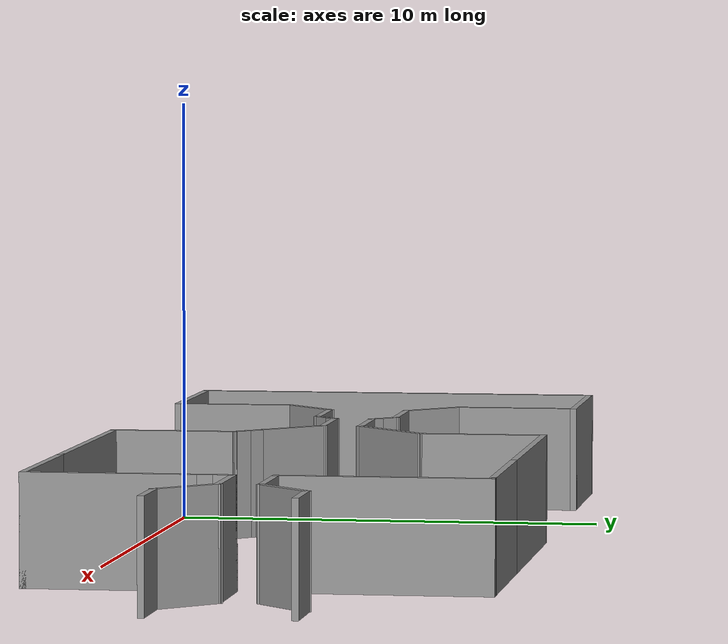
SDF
<?xml version='1.0'?>
<sdf version='1.6'>
  <model name='exp1.sdf'>
    <pose frame=''>5.64467 4.13461 0 0 -0 0</pose>
    <link name='Wall_0'>
      <collision name='Wall_0_Collision'>
        <geometry>
          <box>
            <size>10 0.15 2.5</size>
          </box>
        </geometry>
        <pose frame=''>0 0 1.25 0 -0 0</pose>
      </collision>
      <visual name='Wall_0_Visual'>
        <pose frame=''>0 0 1.25 0 -0 0</pose>
        <geometry>
          <box>
            <size>10 0.15 2.5</size>
          </box>
        </geometry>
        <material>
          <script>
            <uri>file://media/materials/scripts/gazebo.material</uri>
            <name>Gazebo/Grey</name>
          </script>
          <ambient>1 1 1 1</ambient>
        </material>
        <meta>
          <layer>0</layer>
        </meta>
      </visual>
      <pose frame=''>-12.5054 0.070711 0 0 -0 1.5708</pose>
    </link>
    <link name='Wall_1'>
      <collision name='Wall_1_Collision'>
        <geometry>
          <box>
            <size>4 0.15 2.5</size>
          </box>
        </geometry>
        <pose frame=''>0 0 1.25 0 -0 0</pose>
      </collision>
      <visual name='Wall_1_Visual'>
        <pose frame=''>0 0 1.25 0 -0 0</pose>
        <geometry>
          <box>
            <size>4 0.15 2.5</size>
          </box>
        </geometry>
        <material>
          <script>
            <uri>file://media/materials/scripts/gazebo.material</uri>
            <name>Gazebo/Grey</name>
          </script>
          <ambient>1 1 1 1</ambient>
        </material>
        <meta>
          <layer>0</layer>
        </meta>
      </visual>
      <pose frame=''>-10.5804 4.99571 0 0 -0 0</pose>
    </link>
    <link name='Wall_10'>
      <collision name='Wall_10_Collision'>
        <geometry>
          <box>
            <size>0.5 0.15 2.5</size>
          </box>
        </geometry>
        <pose frame=''>0 0 1.25 0 -0 0</pose>
      </collision>
      <visual name='Wall_10_Visual'>
        <pose frame=''>0 0 1.25 0 -0 0</pose>
        <geometry>
          <box>
            <size>0.5 0.15 2.5</size>
          </box>
        </geometry>
        <material>
          <script>
            <uri>file://media/materials/scripts/gazebo.material</uri>
            <name>Gazebo/Grey</name>
          </script>
          <ambient>1 1 1 1</ambient>
        </material>
        <meta>
          <layer>0</layer>
        </meta>
      </visual>
      <pose frame=''>-5.5503 -0.749175 0 0 -0 0.785398</pose>
    </link>
    <link name='Wall_12'>
      <collision name='Wall_12_Collision'>
        <geometry>
          <box>
            <size>0.5 0.15 2.5</size>
          </box>
        </geometry>
        <pose frame=''>0 0 1.25 0 -0 0</pose>
      </collision>
      <visual name='Wall_12_Visual'>
        <pose frame=''>0 0 1.25 0 -0 0</pose>
        <geometry>
          <box>
            <size>0.5 0.15 2.5</size>
          </box>
        </geometry>
        <material>
          <script>
            <uri>file://media/materials/scripts/gazebo.material</uri>
            <name>Gazebo/Grey</name>
          </script>
          <ambient>1 1 1 1</ambient>
        </material>
        <meta>
          <layer>0</layer>
        </meta>
      </visual>
      <pose frame=''>-5.5503 0.890596 0 0 0 -0.785398</pose>
    </link>
    <link name='Wall_13'>
      <collision name='Wall_13_Collision'>
        <geometry>
          <box>
            <size>0.5 0.15 2.5</size>
          </box>
        </geometry>
        <pose frame=''>0 0 1.25 0 -0 0</pose>
      </collision>
      <visual name='Wall_13_Visual'>
        <pose frame=''>0 0 1.25 0 -0 0</pose>
        <geometry>
          <box>
            <size>0.5 0.15 2.5</size>
          </box>
        </geometry>
        <material>
          <script>
            <uri>file://media/materials/scripts/gazebo.material</uri>
            <name>Gazebo/Grey</name>
          </script>
          <ambient>1 1 1 1</ambient>
        </material>
        <meta>
          <layer>0</layer>
        </meta>
      </visual>
      <pose frame=''>-5.30282 0.643109 0 0 0 -0.785398</pose>
    </link>
    <link name='Wall_14'>
      <collision name='Wall_14_Collision'>
        <geometry>
          <box>
            <size>2 0.15 2.5</size>
          </box>
        </geometry>
        <pose frame=''>0 0 1.25 0 -0 0</pose>
      </collision>
      <visual name='Wall_14_Visual'>
        <pose frame=''>0 0 1.25 0 -0 0</pose>
        <geometry>
          <box>
            <size>2 0.15 2.5</size>
          </box>
        </geometry>
        <material>
          <script>
            <uri>file://media/materials/scripts/gazebo.material</uri>
            <name>Gazebo/Grey</name>
          </script>
          <ambient>1 1 1 1</ambient>
        </material>
        <meta>
          <layer>0</layer>
        </meta>
      </visual>
      <pose frame=''>-4.25407 0.519365 0 0 -0 0</pose>
    </link>
    <link name='Wall_16'>
      <collision name='Wall_16_Collision'>
        <geometry>
          <box>
            <size>0.5 0.15 2.5</size>
          </box>
        </geometry>
        <pose frame=''>0 0 1.25 0 -0 0</pose>
      </collision>
      <visual name='Wall_16_Visual'>
        <pose frame=''>0 0 1.25 0 -0 0</pose>
        <geometry>
          <box>
            <size>0.5 0.15 2.5</size>
          </box>
        </geometry>
        <material>
          <script>
            <uri>file://media/materials/scripts/gazebo.material</uri>
            <name>Gazebo/Grey</name>
          </script>
          <ambient>1 1 1 1</ambient>
        </material>
        <meta>
          <layer>0</layer>
        </meta>
      </visual>
      <pose frame=''>-5.30282 -0.501687 0 0 -0 0.785398</pose>
    </link>
    <link name='Wall_17'>
      <collision name='Wall_17_Collision'>
        <geometry>
          <box>
            <size>2 0.15 2.5</size>
          </box>
        </geometry>
        <pose frame=''>0 0 1.25 0 -0 0</pose>
      </collision>
      <visual name='Wall_17_Visual'>
        <pose frame=''>0 0 1.25 0 -0 0</pose>
        <geometry>
          <box>
            <size>2 0.15 2.5</size>
          </box>
        </geometry>
        <material>
          <script>
            <uri>file://media/materials/scripts/gazebo.material</uri>
            <name>Gazebo/Grey</name>
          </script>
          <ambient>1 1 1 1</ambient>
        </material>
        <meta>
          <layer>0</layer>
        </meta>
      </visual>
      <pose frame=''>-4.25407 -0.377943 0 0 -0 0</pose>
    </link>
    <link name='Wall_19'>
      <collision name='Wall_19_Collision'>
        <geometry>
          <box>
            <size>2 0.15 2.5</size>
          </box>
        </geometry>
        <pose frame=''>0 0 1.25 0 -0 0</pose>
      </collision>
      <visual name='Wall_19_Visual'>
        <pose frame=''>0 0 1.25 0 -0 0</pose>
        <geometry>
          <box>
            <size>2 0.15 2.5</size>
          </box>
        </geometry>
        <material>
          <script>
            <uri>file://media/materials/scripts/gazebo.material</uri>
            <name>Gazebo/Grey</name>
          </script>
          <ambient>1 1 1 1</ambient>
        </material>
        <meta>
          <layer>0</layer>
        </meta>
      </visual>
      <pose frame=''>-2.675 -1.03202 0 0 0 -0.785398</pose>
    </link>
    <link name='Wall_2'>
      <collision name='Wall_2_Collision'>
        <geometry>
          <box>
            <size>3 0.15 2.5</size>
          </box>
        </geometry>
        <pose frame=''>0 0 1.25 0 -0 0</pose>
      </collision>
      <visual name='Wall_2_Visual'>
        <pose frame=''>0 0 1.25 0 -0 0</pose>
        <geometry>
          <box>
            <size>3 0.15 2.5</size>
          </box>
        </geometry>
        <material>
          <script>
            <uri>file://media/materials/scripts/gazebo.material</uri>
            <name>Gazebo/Grey</name>
          </script>
          <ambient>1 1 1 1</ambient>
        </material>
        <meta>
          <layer>0</layer>
        </meta>
      </visual>
      <pose frame=''>-8.65542 3.57071 0 0 0 -1.5708</pose>
    </link>
    <link name='Wall_20'>
      <collision name='Wall_20_Collision'>
        <geometry>
          <box>
            <size>0.5 0.15 2.5</size>
          </box>
        </geometry>
        <pose frame=''>0 0 1.25 0 -0 0</pose>
      </collision>
      <visual name='Wall_20_Visual'>
        <pose frame=''>0 0 1.25 0 -0 0</pose>
        <geometry>
          <box>
            <size>0.5 0.15 2.5</size>
          </box>
        </geometry>
        <material>
          <script>
            <uri>file://media/materials/scripts/gazebo.material</uri>
            <name>Gazebo/Grey</name>
          </script>
          <ambient>1 1 1 1</ambient>
        </material>
        <meta>
          <layer>0</layer>
        </meta>
      </visual>
      <pose frame=''>-1.89718 -1.80984 0 0 0 -0.785398</pose>
    </link>
    <link name='Wall_22'>
      <collision name='Wall_22_Collision'>
        <geometry>
          <box>
            <size>2.5 0.15 2.5</size>
          </box>
        </geometry>
        <pose frame=''>0 0 1.25 0 -0 0</pose>
      </collision>
      <visual name='Wall_22_Visual'>
        <pose frame=''>0 0 1.25 0 -0 0</pose>
        <geometry>
          <box>
            <size>2.5 0.15 2.5</size>
          </box>
        </geometry>
        <material>
          <script>
            <uri>file://media/materials/scripts/gazebo.material</uri>
            <name>Gazebo/Grey</name>
          </script>
          <ambient>1 1 1 1</ambient>
        </material>
        <meta>
          <layer>0</layer>
        </meta>
      </visual>
      <pose frame=''>-2.49822 1.35022 0 0 -0 0.785398</pose>
    </link>
    <link name='Wall_24'>
      <collision name='Wall_24_Collision'>
        <geometry>
          <box>
            <size>0.5 0.15 2.5</size>
          </box>
        </geometry>
        <pose frame=''>0 0 1.25 0 -0 0</pose>
      </collision>
      <visual name='Wall_24_Visual'>
        <pose frame=''>0 0 1.25 0 -0 0</pose>
        <geometry>
          <box>
            <size>0.5 0.15 2.5</size>
          </box>
        </geometry>
        <material>
          <script>
            <uri>file://media/materials/scripts/gazebo.material</uri>
            <name>Gazebo/Grey</name>
          </script>
          <ambient>1 1 1 1</ambient>
        </material>
        <meta>
          <layer>0</layer>
        </meta>
      </visual>
      <pose frame=''>-1.64969 -2.05732 0 0 0 -0.785398</pose>
    </link>
    <link name='Wall_3'>
      <collision name='Wall_3_Collision'>
        <geometry>
          <box>
            <size>1.75 0.15 2.5</size>
          </box>
        </geometry>
        <pose frame=''>0 0 1.25 0 -0 0</pose>
      </collision>
      <visual name='Wall_3_Visual'>
        <pose frame=''>0 0 1.25 0 -0 0</pose>
        <geometry>
          <box>
            <size>1.75 0.15 2.5</size>
          </box>
        </geometry>
        <material>
          <script>
            <uri>file://media/materials/scripts/gazebo.material</uri>
            <name>Gazebo/Grey</name>
          </script>
          <ambient>1 1 1 1</ambient>
        </material>
        <meta>
          <layer>0</layer>
        </meta>
      </visual>
      <pose frame=''>-8.08973 1.58003 0 0 0 -0.785398</pose>
    </link>
    <link name='Wall_31'>
      <collision name='Wall_31_Collision'>
        <geometry>
          <box>
            <size>3 0.15 2.5</size>
          </box>
        </geometry>
        <pose frame=''>0 0 1.25 0 -0 0</pose>
      </collision>
      <visual name='Wall_31_Visual'>
        <pose frame=''>0 0 1.25 0 -0 0</pose>
        <geometry>
          <box>
            <size>3 0.15 2.5</size>
          </box>
        </geometry>
        <material>
          <script>
            <uri>file://media/materials/scripts/gazebo.material</uri>
            <name>Gazebo/Grey</name>
          </script>
          <ambient>1 1 1 1</ambient>
        </material>
        <meta>
          <layer>0</layer>
        </meta>
      </visual>
      <pose frame=''>-1.66737 3.60607 0 0 -0 1.5708</pose>
    </link>
    <link name='Wall_34'>
      <collision name='Wall_34_Collision'>
        <geometry>
          <box>
            <size>6 0.15 2.5</size>
          </box>
        </geometry>
        <pose frame=''>0 0 1.25 0 -0 0</pose>
      </collision>
      <visual name='Wall_34_Visual'>
        <pose frame=''>0 0 1.25 0 -0 0</pose>
        <geometry>
          <box>
            <size>6 0.15 2.5</size>
          </box>
        </geometry>
        <material>
          <script>
            <uri>file://media/materials/scripts/gazebo.material</uri>
            <name>Gazebo/Grey</name>
          </script>
          <ambient>1 1 1 1</ambient>
        </material>
        <meta>
          <layer>0</layer>
        </meta>
      </visual>
      <pose frame=''>1.25763 5.03107 0 0 -0 0</pose>
    </link>
    <link name='Wall_4'>
      <collision name='Wall_4_Collision'>
        <geometry>
          <box>
            <size>2 0.15 2.5</size>
          </box>
        </geometry>
        <pose frame=''>0 0 1.25 0 -0 0</pose>
      </collision>
      <visual name='Wall_4_Visual'>
        <pose frame=''>0 0 1.25 0 -0 0</pose>
        <geometry>
          <box>
            <size>2 0.15 2.5</size>
          </box>
        </geometry>
        <material>
          <script>
            <uri>file://media/materials/scripts/gazebo.material</uri>
            <name>Gazebo/Grey</name>
          </script>
          <ambient>1 1 1 1</ambient>
        </material>
        <meta>
          <layer>0</layer>
        </meta>
      </visual>
      <pose frame=''>-6.59905 1.01434 0 0 -0 0</pose>
    </link>
    <link name='Wall_41'>
      <collision name='Wall_41_Collision'>
        <geometry>
          <box>
            <size>3 0.15 2.5</size>
          </box>
        </geometry>
        <pose frame=''>0 0 1.25 0 -0 0</pose>
      </collision>
      <visual name='Wall_41_Visual'>
        <pose frame=''>0 0 1.25 0 -0 0</pose>
        <geometry>
          <box>
            <size>3 0.15 2.5</size>
          </box>
        </geometry>
        <material>
          <script>
            <uri>file://media/materials/scripts/gazebo.material</uri>
            <name>Gazebo/Grey</name>
          </script>
          <ambient>1 1 1 1</ambient>
        </material>
        <meta>
          <layer>0</layer>
        </meta>
      </visual>
      <pose frame=''>-1.52595 -3.60607 0 0 0 -1.5708</pose>
    </link>
    <link name='Wall_42'>
      <collision name='Wall_42_Collision'>
        <geometry>
          <box>
            <size>6 0.15 2.5</size>
          </box>
        </geometry>
        <pose frame=''>0 0 1.25 0 -0 0</pose>
      </collision>
      <visual name='Wall_42_Visual'>
        <pose frame=''>0 0 1.25 0 -0 0</pose>
        <geometry>
          <box>
            <size>6 0.15 2.5</size>
          </box>
        </geometry>
        <material>
          <script>
            <uri>file://media/materials/scripts/gazebo.material</uri>
            <name>Gazebo/Grey</name>
          </script>
          <ambient>1 1 1 1</ambient>
        </material>
        <meta>
          <layer>0</layer>
        </meta>
      </visual>
      <pose frame=''>1.39905 -5.03107 0 0 -0 0</pose>
    </link>
    <link name='Wall_46'>
      <collision name='Wall_46_Collision'>
        <geometry>
          <box>
            <size>4 0.15 2.5</size>
          </box>
        </geometry>
        <pose frame=''>0 0 1.25 0 -0 0</pose>
      </collision>
      <visual name='Wall_46_Visual'>
        <pose frame=''>0 0 1.25 0 -0 0</pose>
        <geometry>
          <box>
            <size>4 0.15 2.5</size>
          </box>
        </geometry>
        <material>
          <script>
            <uri>file://media/materials/scripts/gazebo.material</uri>
            <name>Gazebo/Grey</name>
          </script>
          <ambient>1 1 1 1</ambient>
        </material>
        <meta>
          <layer>0</layer>
        </meta>
      </visual>
      <pose frame=''>6.24905 -5.03107 0 0 -0 0</pose>
    </link>
    <link name='Wall_47'>
      <collision name='Wall_47_Collision'>
        <geometry>
          <box>
            <size>4 0.15 2.5</size>
          </box>
        </geometry>
        <pose frame=''>0 0 1.25 0 -0 0</pose>
      </collision>
      <visual name='Wall_47_Visual'>
        <pose frame=''>0 0 1.25 0 -0 0</pose>
        <geometry>
          <box>
            <size>4 0.15 2.5</size>
          </box>
        </geometry>
        <material>
          <script>
            <uri>file://media/materials/scripts/gazebo.material</uri>
            <name>Gazebo/Grey</name>
          </script>
          <ambient>1 1 1 1</ambient>
        </material>
        <meta>
          <layer>0</layer>
        </meta>
      </visual>
      <pose frame=''>8.17405 -3.10607 0 0 -0 1.5708</pose>
    </link>
    <link name='Wall_48'>
      <collision name='Wall_48_Collision'>
        <geometry>
          <box>
            <size>0.5 0.15 2.5</size>
          </box>
        </geometry>
        <pose frame=''>0 0 1.25 0 -0 0</pose>
      </collision>
      <visual name='Wall_48_Visual'>
        <pose frame=''>0 0 1.25 0 -0 0</pose>
        <geometry>
          <box>
            <size>0.5 0.15 2.5</size>
          </box>
        </geometry>
        <material>
          <script>
            <uri>file://media/materials/scripts/gazebo.material</uri>
            <name>Gazebo/Grey</name>
          </script>
          <ambient>1 1 1 1</ambient>
        </material>
        <meta>
          <layer>0</layer>
        </meta>
      </visual>
      <pose frame=''>8.17405 -1.00607 0 0 -0 1.5708</pose>
    </link>
    <link name='Wall_49'>
      <collision name='Wall_49_Collision'>
        <geometry>
          <box>
            <size>0.5 0.15 2.5</size>
          </box>
        </geometry>
        <pose frame=''>0 0 1.25 0 -0 0</pose>
      </collision>
      <visual name='Wall_49_Visual'>
        <pose frame=''>0 0 1.25 0 -0 0</pose>
        <geometry>
          <box>
            <size>0.5 0.15 2.5</size>
          </box>
        </geometry>
        <material>
          <script>
            <uri>file://media/materials/scripts/gazebo.material</uri>
            <name>Gazebo/Grey</name>
          </script>
          <ambient>1 1 1 1</ambient>
        </material>
        <meta>
          <layer>0</layer>
        </meta>
      </visual>
      <pose frame=''>8.17405 -0.656066 0 0 -0 1.5708</pose>
    </link>
    <link name='Wall_50'>
      <collision name='Wall_50_Collision'>
        <geometry>
          <box>
            <size>2 0.15 2.5</size>
          </box>
        </geometry>
        <pose frame=''>0 0 1.25 0 -0 0</pose>
      </collision>
      <visual name='Wall_50_Visual'>
        <pose frame=''>0 0 1.25 0 -0 0</pose>
        <geometry>
          <box>
            <size>2 0.15 2.5</size>
          </box>
        </geometry>
        <material>
          <script>
            <uri>file://media/materials/scripts/gazebo.material</uri>
            <name>Gazebo/Grey</name>
          </script>
          <ambient>1 1 1 1</ambient>
        </material>
        <meta>
          <layer>0</layer>
        </meta>
      </visual>
      <pose frame=''>9.09905 -0.481066 0 0 -0 0</pose>
    </link>
    <link name='Wall_51'>
      <collision name='Wall_51_Collision'>
        <geometry>
          <box>
            <size>1.75 0.15 2.5</size>
          </box>
        </geometry>
        <pose frame=''>0 0 1.25 0 -0 0</pose>
      </collision>
      <visual name='Wall_51_Visual'>
        <pose frame=''>0 0 1.25 0 -0 0</pose>
        <geometry>
          <box>
            <size>1.75 0.15 2.5</size>
          </box>
        </geometry>
        <material>
          <script>
            <uri>file://media/materials/scripts/gazebo.material</uri>
            <name>Gazebo/Grey</name>
          </script>
          <ambient>1 1 1 1</ambient>
        </material>
        <meta>
          <layer>0</layer>
        </meta>
      </visual>
      <pose frame=''>10.5897 -1.04675 0 0 0 -0.785398</pose>
    </link>
    <link name='Wall_52'>
      <collision name='Wall_52_Collision'>
        <geometry>
          <box>
            <size>1.5 0.15 2.5</size>
          </box>
        </geometry>
        <pose frame=''>0 0 1.25 0 -0 0</pose>
      </collision>
      <visual name='Wall_52_Visual'>
        <pose frame=''>0 0 1.25 0 -0 0</pose>
        <geometry>
          <box>
            <size>1.5 0.15 2.5</size>
          </box>
        </geometry>
        <material>
          <script>
            <uri>file://media/materials/scripts/gazebo.material</uri>
            <name>Gazebo/Grey</name>
          </script>
          <ambient>1 1 1 1</ambient>
        </material>
        <meta>
          <layer>0</layer>
        </meta>
      </visual>
      <pose frame=''>11.8304 -1.61244 0 0 -0 0</pose>
    </link>
    <link name='Wall_59'>
      <collision name='Wall_59_Collision'>
        <geometry>
          <box>
            <size>4 0.15 2.5</size>
          </box>
        </geometry>
        <pose frame=''>0 0 1.25 0 -0 0</pose>
      </collision>
      <visual name='Wall_59_Visual'>
        <pose frame=''>0 0 1.25 0 -0 0</pose>
        <geometry>
          <box>
            <size>4 0.15 2.5</size>
          </box>
        </geometry>
        <material>
          <script>
            <uri>file://media/materials/scripts/gazebo.material</uri>
            <name>Gazebo/Grey</name>
          </script>
          <ambient>1 1 1 1</ambient>
        </material>
        <meta>
          <layer>0</layer>
        </meta>
      </visual>
      <pose frame=''>6.10763 5.03107 0 0 -0 0</pose>
    </link>
    <link name='Wall_6'>
      <collision name='Wall_6_Collision'>
        <geometry>
          <box>
            <size>4 0.15 2.5</size>
          </box>
        </geometry>
        <pose frame=''>0 0 1.25 0 -0 0</pose>
      </collision>
      <visual name='Wall_6_Visual'>
        <pose frame=''>0 0 1.25 0 -0 0</pose>
        <geometry>
          <box>
            <size>4 0.15 2.5</size>
          </box>
        </geometry>
        <material>
          <script>
            <uri>file://media/materials/scripts/gazebo.material</uri>
            <name>Gazebo/Grey</name>
          </script>
          <ambient>1 1 1 1</ambient>
        </material>
        <meta>
          <layer>0</layer>
        </meta>
      </visual>
      <pose frame=''>-10.5804 -4.85429 0 0 -0 0</pose>
    </link>
    <link name='Wall_60'>
      <collision name='Wall_60_Collision'>
        <geometry>
          <box>
            <size>0.15 0.15 2.5</size>
          </box>
        </geometry>
        <pose frame=''>0 0 1.25 0 -0 0</pose>
      </collision>
      <visual name='Wall_60_Visual'>
        <pose frame=''>0 0 1.25 0 -0 0</pose>
        <geometry>
          <box>
            <size>0.15 0.15 2.5</size>
          </box>
        </geometry>
        <material>
          <script>
            <uri>file://media/materials/scripts/gazebo.material</uri>
            <name>Gazebo/Grey</name>
          </script>
          <ambient>1 1 1 1</ambient>
        </material>
        <meta>
          <layer>0</layer>
        </meta>
      </visual>
      <pose frame=''>8.03263 5.03107 0 0 -0 0</pose>
    </link>
    <link name='Wall_61'>
      <collision name='Wall_61_Collision'>
        <geometry>
          <box>
            <size>0.15 0.15 2.5</size>
          </box>
        </geometry>
        <pose frame=''>0 0 1.25 0 -0 0</pose>
      </collision>
      <visual name='Wall_61_Visual'>
        <pose frame=''>0 0 1.25 0 -0 0</pose>
        <geometry>
          <box>
            <size>0.15 0.15 2.5</size>
          </box>
        </geometry>
        <material>
          <script>
            <uri>file://media/materials/scripts/gazebo.material</uri>
            <name>Gazebo/Grey</name>
          </script>
          <ambient>1 1 1 1</ambient>
        </material>
        <meta>
          <layer>0</layer>
        </meta>
      </visual>
      <pose frame=''>8.03263 5.03107 0 0 -0 0</pose>
    </link>
    <link name='Wall_62'>
      <collision name='Wall_62_Collision'>
        <geometry>
          <box>
            <size>0.25 0.15 2.5</size>
          </box>
        </geometry>
        <pose frame=''>0 0 1.25 0 -0 0</pose>
      </collision>
      <visual name='Wall_62_Visual'>
        <pose frame=''>0 0 1.25 0 -0 0</pose>
        <geometry>
          <box>
            <size>0.25 0.15 2.5</size>
          </box>
        </geometry>
        <material>
          <script>
            <uri>file://media/materials/scripts/gazebo.material</uri>
            <name>Gazebo/Grey</name>
          </script>
          <ambient>1 1 1 1</ambient>
        </material>
        <meta>
          <layer>0</layer>
        </meta>
      </visual>
      <pose frame=''>8.08263 5.03107 0 0 -0 0</pose>
    </link>
    <link name='Wall_63'>
      <collision name='Wall_63_Collision'>
        <geometry>
          <box>
            <size>4.75 0.15 2.5</size>
          </box>
        </geometry>
        <pose frame=''>0 0 1.25 0 -0 0</pose>
      </collision>
      <visual name='Wall_63_Visual'>
        <pose frame=''>0 0 1.25 0 -0 0</pose>
        <geometry>
          <box>
            <size>4.75 0.15 2.5</size>
          </box>
        </geometry>
        <material>
          <script>
            <uri>file://media/materials/scripts/gazebo.material</uri>
            <name>Gazebo/Grey</name>
          </script>
          <ambient>1 1 1 1</ambient>
        </material>
        <meta>
          <layer>0</layer>
        </meta>
      </visual>
      <pose frame=''>8.13263 2.73107 0 0 0 -1.5708</pose>
    </link>
    <link name='Wall_64'>
      <collision name='Wall_64_Collision'>
        <geometry>
          <box>
            <size>2 0.15 2.5</size>
          </box>
        </geometry>
        <pose frame=''>0 0 1.25 0 -0 0</pose>
      </collision>
      <visual name='Wall_64_Visual'>
        <pose frame=''>0 0 1.25 0 -0 0</pose>
        <geometry>
          <box>
            <size>2 0.15 2.5</size>
          </box>
        </geometry>
        <material>
          <script>
            <uri>file://media/materials/scripts/gazebo.material</uri>
            <name>Gazebo/Grey</name>
          </script>
          <ambient>1 1 1 1</ambient>
        </material>
        <meta>
          <layer>0</layer>
        </meta>
      </visual>
      <pose frame=''>9.05763 0.431066 0 0 -0 0</pose>
    </link>
    <link name='Wall_65'>
      <collision name='Wall_65_Collision'>
        <geometry>
          <box>
            <size>1.75 0.15 2.5</size>
          </box>
        </geometry>
        <pose frame=''>0 0 1.25 0 -0 0</pose>
      </collision>
      <visual name='Wall_65_Visual'>
        <pose frame=''>0 0 1.25 0 -0 0</pose>
        <geometry>
          <box>
            <size>1.75 0.15 2.5</size>
          </box>
        </geometry>
        <material>
          <script>
            <uri>file://media/materials/scripts/gazebo.material</uri>
            <name>Gazebo/Grey</name>
          </script>
          <ambient>1 1 1 1</ambient>
        </material>
        <meta>
          <layer>0</layer>
        </meta>
      </visual>
      <pose frame=''>10.5483 0.996752 0 0 -0 0.785398</pose>
    </link>
    <link name='Wall_66'>
      <collision name='Wall_66_Collision'>
        <geometry>
          <box>
            <size>1.5 0.15 2.5</size>
          </box>
        </geometry>
        <pose frame=''>0 0 1.25 0 -0 0</pose>
      </collision>
      <visual name='Wall_66_Visual'>
        <pose frame=''>0 0 1.25 0 -0 0</pose>
        <geometry>
          <box>
            <size>1.5 0.15 2.5</size>
          </box>
        </geometry>
        <material>
          <script>
            <uri>file://media/materials/scripts/gazebo.material</uri>
            <name>Gazebo/Grey</name>
          </script>
          <ambient>1 1 1 1</ambient>
        </material>
        <meta>
          <layer>0</layer>
        </meta>
      </visual>
      <pose frame=''>11.789 1.56244 0 0 -0 0</pose>
    </link>
    <link name='Wall_7'>
      <collision name='Wall_7_Collision'>
        <geometry>
          <box>
            <size>3 0.15 2.5</size>
          </box>
        </geometry>
        <pose frame=''>0 0 1.25 0 -0 0</pose>
      </collision>
      <visual name='Wall_7_Visual'>
        <pose frame=''>0 0 1.25 0 -0 0</pose>
        <geometry>
          <box>
            <size>3 0.15 2.5</size>
          </box>
        </geometry>
        <material>
          <script>
            <uri>file://media/materials/scripts/gazebo.material</uri>
            <name>Gazebo/Grey</name>
          </script>
          <ambient>1 1 1 1</ambient>
        </material>
        <meta>
          <layer>0</layer>
        </meta>
      </visual>
      <pose frame=''>-8.65542 -3.42929 0 0 -0 1.5708</pose>
    </link>
    <link name='Wall_8'>
      <collision name='Wall_8_Collision'>
        <geometry>
          <box>
            <size>1.75 0.15 2.5</size>
          </box>
        </geometry>
        <pose frame=''>0 0 1.25 0 -0 0</pose>
      </collision>
      <visual name='Wall_8_Visual'>
        <pose frame=''>0 0 1.25 0 -0 0</pose>
        <geometry>
          <box>
            <size>1.75 0.15 2.5</size>
          </box>
        </geometry>
        <material>
          <script>
            <uri>file://media/materials/scripts/gazebo.material</uri>
            <name>Gazebo/Grey</name>
          </script>
          <ambient>1 1 1 1</ambient>
        </material>
        <meta>
          <layer>0</layer>
        </meta>
      </visual>
      <pose frame=''>-8.08973 -1.4386 0 0 -0 0.785398</pose>
    </link>
    <link name='Wall_9'>
      <collision name='Wall_9_Collision'>
        <geometry>
          <box>
            <size>2 0.15 2.5</size>
          </box>
        </geometry>
        <pose frame=''>0 0 1.25 0 -0 0</pose>
      </collision>
      <visual name='Wall_9_Visual'>
        <pose frame=''>0 0 1.25 0 -0 0</pose>
        <geometry>
          <box>
            <size>2 0.15 2.5</size>
          </box>
        </geometry>
        <material>
          <script>
            <uri>file://media/materials/scripts/gazebo.material</uri>
            <name>Gazebo/Grey</name>
          </script>
          <ambient>1 1 1 1</ambient>
        </material>
        <meta>
          <layer>0</layer>
        </meta>
      </visual>
      <pose frame=''>-6.59905 -0.872918 0 0 -0 0</pose>
    </link>
    <static>1</static>
  </model>
</sdf>
